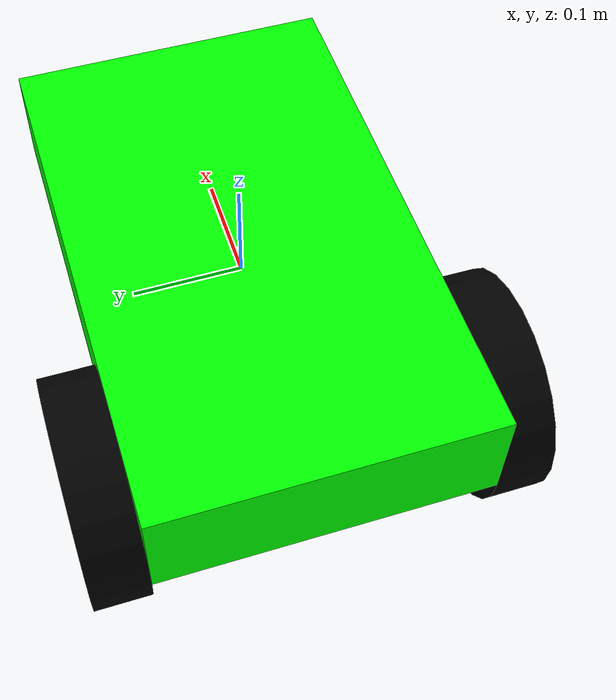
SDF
<?xml version="1.0" ?>
<sdf version="1.9">
    <model name="differential_drive_robot_green">

        <link name="base_footprint"/>

        <joint name="base_joint" type="fixed">
            <parent>base_footprint</parent>
            <child>body_link</child>
            <pose>0 0 0.15 0 0 0</pose>
        </joint>

        <link name="body_link">
            <inertial>
                <mass>10.0</mass>
                <inertia>
                    <ixx>0.083</ixx><ixy>0</ixy><ixz>0</ixz>
                    <iyy>0.216</iyy><iyz>0</iyz><izz>0.283</izz>
                </inertia>
            </inertial>
            <visual name="visual">
                <geometry>
                    <box><size>0.5 0.3 0.1</size></box>
                </geometry>
                <material>
                    <ambient>0.0 0.8 0.0 1</ambient>
                    <diffuse>0.0 1.0 0.0 1</diffuse>
                    <specular>0.0 0.2 0.0 1</specular>
                </material>
            </visual>
            <collision name="collision">
                <geometry>
                    <box><size>0.5 0.3 0.1</size></box>
                </geometry>
            </collision>
        </link>

        <joint name="left_wheel_joint" type="revolute">
            <parent>body_link</parent>
            <child>left_wheel_link</child>
            <pose relative_to="body_link">-0.15 0.175 -0.05 0 0 0</pose>
            <axis>
                <xyz>0 1 0</xyz>
                <limit>
                    <effort>100</effort>
                    <velocity>10.0</velocity>
                </limit>
                <dynamics>
                    <damping>0.1</damping>
                    <friction>0.1</friction>
                </dynamics>
            </axis>
        </joint>

        <link name="left_wheel_link">
            <pose relative_to="left_wheel_joint">0 0 0 1.5708 0 0</pose>
            <inertial>
                <mass>2.0</mass>
                <inertia>
                    <ixx>0.0054</ixx><ixy>0</ixy><ixz>0</ixz>
                    <iyy>0.0054</iyy><iyz>0</iyz><izz>0.01</izz>
                </inertia>
            </inertial>
            <visual name="visual">
                <geometry>
                    <cylinder><radius>0.1</radius><length>0.05</length></cylinder>
                </geometry>
                <material><ambient>0 0 0 1</ambient><diffuse>0 0 0 1</diffuse></material>
            </visual>
            <collision name="collision">
                <geometry>
                    <cylinder><radius>0.1</radius><length>0.05</length></cylinder>
                </geometry>
                <surface>
                    <friction><ode><mu>1.0</mu><mu2>1.0</mu2></ode></friction>
                </surface>
            </collision>
        </link>

        <joint name="right_wheel_joint" type="revolute">
            <parent>body_link</parent>
            <child>right_wheel_link</child>
            <pose relative_to="body_link">-0.15 -0.175 -0.05 0 0 0</pose>
            <axis>
                <xyz>0 1 0</xyz>
                <limit>
                    <effort>100</effort>
                    <velocity>10.0</velocity>
                </limit>
                <dynamics>
                    <damping>0.1</damping>
                    <friction>0.1</friction>
                </dynamics>
            </axis>
        </joint>

        <link name="right_wheel_link">
            <pose relative_to="right_wheel_joint">0 0 0 1.5708 0 0</pose>
            <inertial>
                <mass>2.0</mass>
                <inertia>
                    <ixx>0.0054</ixx><ixy>0</ixy><ixz>0</ixz>
                    <iyy>0.0054</iyy><iyz>0</iyz><izz>0.01</izz>
                </inertia>
            </inertial>
            <visual name="visual">
                <geometry>
                    <cylinder><radius>0.1</radius><length>0.05</length></cylinder>
                </geometry>
                <material><ambient>0 0 0 1</ambient><diffuse>0 0 0 1</diffuse></material>
            </visual>
            <collision name="collision">
                <geometry>
                    <cylinder><radius>0.1</radius><length>0.05</length></cylinder>
                </geometry>
                <surface>
                    <friction><ode><mu>1.0</mu><mu2>1.0</mu2></ode></friction>
                </surface>
            </collision>
        </link>

        <joint name="caster_joint" type="fixed">
            <parent>body_link</parent>
            <child>caster_link</child>
            <pose relative_to="body_link">0.15 0 -0.05 0 0 0</pose>
        </joint>

        <link name="caster_link">
            <pose relative_to="caster_joint">0 0 0 0 0 0</pose>
            <inertial>
                <mass>0.5</mass>
                <inertia>
                    <ixx>0.002</ixx><ixy>0</ixy><ixz>0</ixz>
                    <iyy>0.002</iyy><iyz>0</iyz><izz>0.002</izz>
                </inertia>
            </inertial>
            <visual name="visual">
                <geometry>
                    <sphere><radius>0.1</radius></sphere>
                </geometry>
                <material><ambient>0 0 0 1</ambient><diffuse>0 0 0 1</diffuse></material>
            </visual>
            <collision name="collision">
                <geometry>
                    <sphere><radius>0.1</radius></sphere>
                </geometry>
                <surface>
                    <friction><ode><mu>0.01</mu><mu2>0.01</mu2></ode></friction>
                </surface>
            </collision>
        </link>

        <plugin filename="gz-sim-diff-drive-system" name="gz::sim::systems::DiffDrive">
            <right_joint>right_wheel_joint</right_joint>
            <left_joint>left_wheel_joint</left_joint>
            <wheel_separation>0.35</wheel_separation>
            <wheel_radius>0.1</wheel_radius>
            <max_linear_acceleration>10</max_linear_acceleration>
            <odom_publish_frequency>100</odom_publish_frequency>
            <topic>cmd_vel</topic>
            <odom_topic>odometry</odom_topic>
        </plugin>

        <plugin filename="gz-sim-joint-state-publisher-system" name="gz::sim::systems::JointStatePublisher">
            <topic>joint_states</topic>
            <joint_name>right_wheel_joint</joint_name>
            <joint_name>left_wheel_joint</joint_name>
        </plugin>

        <plugin filename="gz-sim-pose-publisher-system" name="gz::sim::systems::PosePublisher">
            <publish_link_pose>true</publish_link_pose> <publish_visual_pose>false</publish_visual_pose>
            <publish_collision_pose>false</publish_collision_pose>
            <publish_sensor_pose>false</publish_sensor_pose>

            <publish_nested_model_pose>true</publish_nested_model_pose> <use_pose_vector_msg>true</use_pose_vector_msg>
            <static_publisher>false</static_publisher>
            <static_update_frequency>100</static_update_frequency>
        </plugin>

    </model>
</sdf>
